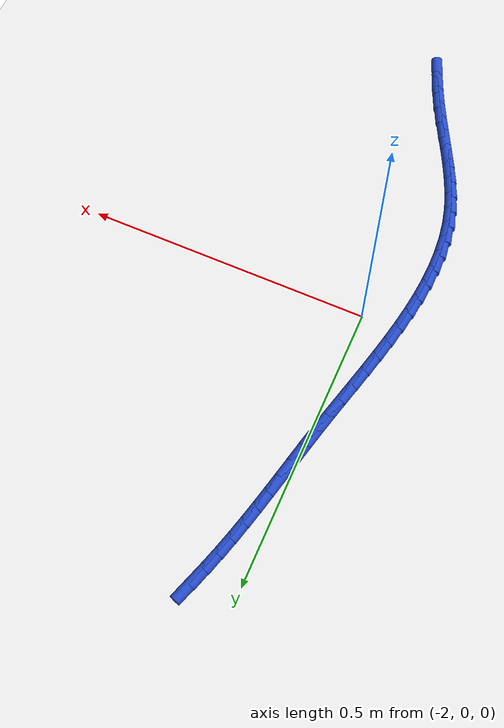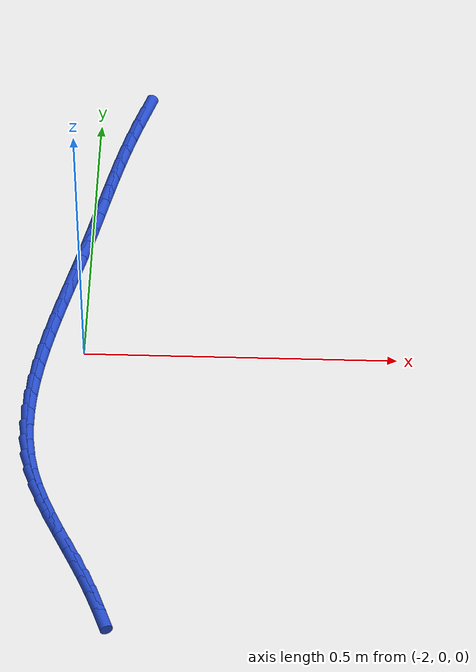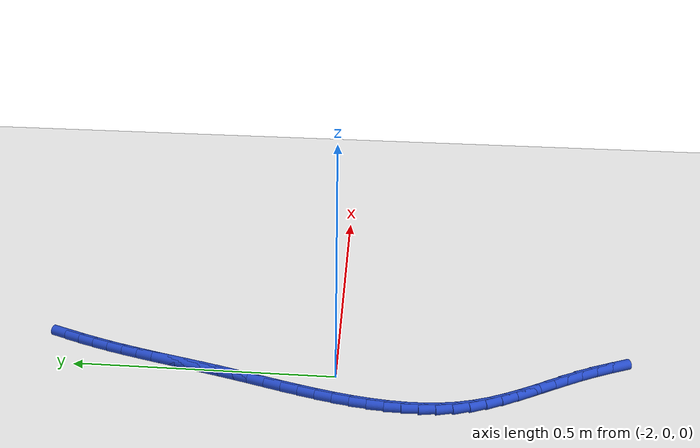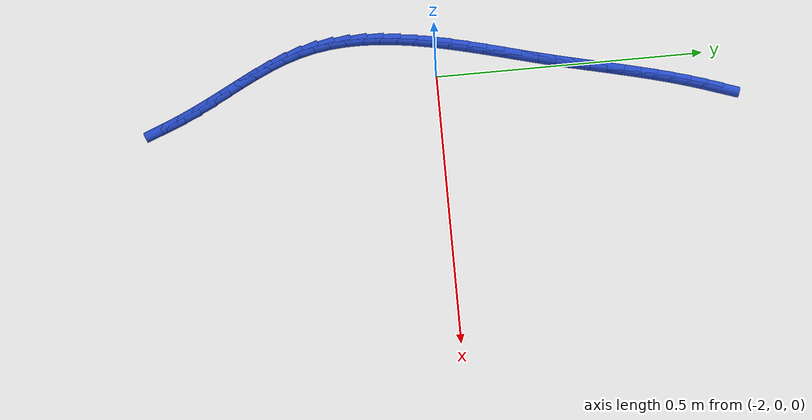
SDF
<sdf version="1.6">
 <world name="default">
  <model name="ground_plane">
   <static>1</static>
   <link name="link">
    <collision name="collision">
     <geometry><plane><normal>0 0 1</normal><size>100 100</size></plane></geometry>
     <surface><friction><ode><mu>100</mu><mu2>50</mu2></ode></friction></surface>
    </collision>
    <visual name="visual">
     <cast_shadows>0</cast_shadows>
     <geometry><plane><normal>0 0 1</normal><size>100 100</size></plane></geometry>
     <material>
      <script><uri>file://media/materials/scripts/gazebo.material</uri><name>Gazebo/WhiteGlow</name></script>
     </material>
    </visual>
   </link>
  </model>
  <model name="line">
   <link name="link_87">
    <pose>-1.9296536162004716 0.5215751881870206 0.01 0 1.57 1.243273327190928</pose>
    <collision name="collision">
     <geometry><cylinder><radius>0.01</radius><length>0.08</length></cylinder></geometry>
    </collision>
    <visual name="visual">
     <material>
      <script><name>Gazebo/Blue</name><uri>file://media/materials/scripts/gazebo.material</uri></script>
     </material>
     <geometry><cylinder><radius>0.01</radius><length>0.08</length></cylinder></geometry>
    </visual>
   </link>
   <link name="link_88">
    <pose>-1.9397027747482027 0.4919979264623918 0.01 0 1.57 1.2666191353432439</pose>
    <collision name="collision">
     <geometry><cylinder><radius>0.01</radius><length>0.08</length></cylinder></geometry>
    </collision>
    <visual name="visual">
     <material>
      <script><name>Gazebo/Blue</name><uri>file://media/materials/scripts/gazebo.material</uri></script>
     </material>
     <geometry><cylinder><radius>0.01</radius><length>0.08</length></cylinder></geometry>
    </visual>
   </link>
   <link name="link_89">
    <pose>-1.9490446085473923 0.462239196307492 0.01 0 1.57 1.28817338275164</pose>
    <collision name="collision">
     <geometry><cylinder><radius>0.01</radius><length>0.08</length></cylinder></geometry>
    </collision>
    <visual name="visual">
     <material>
      <script><name>Gazebo/Blue</name><uri>file://media/materials/scripts/gazebo.material</uri></script>
     </material>
     <geometry><cylinder><radius>0.01</radius><length>0.08</length></cylinder></geometry>
    </visual>
   </link>
   <link name="link_90">
    <pose>-1.9577324476126858 0.4323220144051863 0.01 0 1.57 1.307262991102931</pose>
    <collision name="collision">
     <geometry><cylinder><radius>0.01</radius><length>0.08</length></cylinder></geometry>
    </collision>
    <visual name="visual">
     <material>
      <script><name>Gazebo/Blue</name><uri>file://media/materials/scripts/gazebo.material</uri></script>
     </material>
     <geometry><cylinder><radius>0.01</radius><length>0.08</length></cylinder></geometry>
    </visual>
   </link>
   <link name="link_91">
    <pose>-1.9658437033339735 0.40225900384577296 0.01 0 1.57 1.3223363342150698</pose>
    <collision name="collision">
     <geometry><cylinder><radius>0.01</radius><length>0.08</length></cylinder></geometry>
    </collision>
    <visual name="visual">
     <material>
      <script><name>Gazebo/Blue</name><uri>file://media/materials/scripts/gazebo.material</uri></script>
     </material>
     <geometry><cylinder><radius>0.01</radius><length>0.08</length></cylinder></geometry>
    </visual>
   </link>
   <link name="link_92">
    <pose>-1.9735105440882004 0.37203915444246666 0.01 0 1.57 1.3331264177465174</pose>
    <collision name="collision">
     <geometry><cylinder><radius>0.01</radius><length>0.08</length></cylinder></geometry>
    </collision>
    <visual name="visual">
     <material>
      <script><name>Gazebo/Blue</name><uri>file://media/materials/scripts/gazebo.material</uri></script>
     </material>
     <geometry><cylinder><radius>0.01</radius><length>0.08</length></cylinder></geometry>
    </visual>
   </link>
   <link name="link_93">
    <pose>-1.9808727092579836 0.34164818834010924 0.01 0 1.57 1.3396191649777203</pose>
    <collision name="collision">
     <geometry><cylinder><radius>0.01</radius><length>0.08</length></cylinder></geometry>
    </collision>
    <visual name="visual">
     <material>
      <script><name>Gazebo/Blue</name><uri>file://media/materials/scripts/gazebo.material</uri></script>
     </material>
     <geometry><cylinder><radius>0.01</radius><length>0.08</length></cylinder></geometry>
    </visual>
   </link>
   <link name="link_94">
    <pose>-1.9880699382259401 0.3110718276835417 0.01 0 1.57 1.3418430489996316</pose>
    <collision name="collision">
     <geometry><cylinder><radius>0.01</radius><length>0.08</length></cylinder></geometry>
    </collision>
    <visual name="visual">
     <material>
      <script><name>Gazebo/Blue</name><uri>file://media/materials/scripts/gazebo.material</uri></script>
     </material>
     <geometry><cylinder><radius>0.01</radius><length>0.08</length></cylinder></geometry>
    </visual>
   </link>
   <link name="link_95">
    <pose>-1.9952419703746878 0.2802957946176052 0.01 0 1.57 1.3398642333720083</pose>
    <collision name="collision">
     <geometry><cylinder><radius>0.01</radius><length>0.08</length></cylinder></geometry>
    </collision>
    <visual name="visual">
     <material>
      <script><name>Gazebo/Blue</name><uri>file://media/materials/scripts/gazebo.material</uri></script>
     </material>
     <geometry><cylinder><radius>0.01</radius><length>0.08</length></cylinder></geometry>
    </visual>
   </link>
   <link name="link_96">
    <pose>-2.002528545086843 0.24930581128714158 0.01 0 1.57 1.33378332347846</pose>
    <collision name="collision">
     <geometry><cylinder><radius>0.01</radius><length>0.08</length></cylinder></geometry>
    </collision>
    <visual name="visual">
     <material>
      <script><name>Gazebo/Blue</name><uri>file://media/materials/scripts/gazebo.material</uri></script>
     </material>
     <geometry><cylinder><radius>0.01</radius><length>0.08</length></cylinder></geometry>
    </visual>
   </link>
   <link name="link_97">
    <pose>-2.010069401745023 0.21808759983699186 0.01 0 1.57 1.3240567642599066</pose>
    <collision name="collision">
     <geometry><cylinder><radius>0.01</radius><length>0.08</length></cylinder></geometry>
    </collision>
    <visual name="visual">
     <material>
      <script><name>Gazebo/Blue</name><uri>file://media/materials/scripts/gazebo.material</uri></script>
     </material>
     <geometry><cylinder><radius>0.01</radius><length>0.08</length></cylinder></geometry>
    </visual>
   </link>
   <link name="link_98">
    <pose>-2.0179929043700824 0.18662912292478354 0.01 0 1.57 1.3160329109033007</pose>
    <collision name="collision">
     <geometry><cylinder><radius>0.01</radius><length>0.08</length></cylinder></geometry>
    </collision>
    <visual name="visual">
     <material>
      <script><name>Gazebo/Blue</name><uri>file://media/materials/scripts/gazebo.material</uri></script>
     </material>
     <geometry><cylinder><radius>0.01</radius><length>0.08</length></cylinder></geometry>
    </visual>
   </link>
   <link name="link_99">
    <pose>-2.026241559856527 0.15495494997957435 0.01 0 1.57 1.3138533801849792</pose>
    <collision name="collision">
     <geometry><cylinder><radius>0.01</radius><length>0.08</length></cylinder></geometry>
    </collision>
    <visual name="visual">
     <material>
      <script><name>Gazebo/Blue</name><uri>file://media/materials/scripts/gazebo.material</uri></script>
     </material>
     <geometry><cylinder><radius>0.01</radius><length>0.08</length></cylinder></geometry>
    </visual>
   </link>
   <link name="link_100">
    <pose>-2.0346063510918504 0.1231194948856752 0.01 0 1.57 1.3175220092539452</pose>
    <collision name="collision">
     <geometry><cylinder><radius>0.01</radius><length>0.08</length></cylinder></geometry>
    </collision>
    <visual name="visual">
     <material>
      <script><name>Gazebo/Blue</name><uri>file://media/materials/scripts/gazebo.material</uri></script>
     </material>
     <geometry><cylinder><radius>0.01</radius><length>0.08</length></cylinder></geometry>
    </visual>
   </link>
   <link name="link_101">
    <pose>-2.042873842135962 0.09117804186804264 0.01 0 1.57 1.3270326459852266</pose>
    <collision name="collision">
     <geometry><cylinder><radius>0.01</radius><length>0.08</length></cylinder></geometry>
    </collision>
    <visual name="visual">
     <material>
      <script><name>Gazebo/Blue</name><uri>file://media/materials/scripts/gazebo.material</uri></script>
     </material>
     <geometry><cylinder><radius>0.01</radius><length>0.08</length></cylinder></geometry>
    </visual>
   </link>
   <link name="link_102">
    <pose>-2.050830597048769 0.059185875151634273 0.01 0 1.57 1.3424893006545788</pose>
    <collision name="collision">
     <geometry><cylinder><radius>0.01</radius><length>0.08</length></cylinder></geometry>
    </collision>
    <visual name="visual">
     <material>
      <script><name>Gazebo/Blue</name><uri>file://media/materials/scripts/gazebo.material</uri></script>
     </material>
     <geometry><cylinder><radius>0.01</radius><length>0.08</length></cylinder></geometry>
    </visual>
   </link>
   <link name="link_103">
    <pose>-2.0582631798901803 0.027198278961406766 0.01 0 1.57 1.3640996556070148</pose>
    <collision name="collision">
     <geometry><cylinder><radius>0.01</radius><length>0.08</length></cylinder></geometry>
    </collision>
    <visual name="visual">
     <material>
      <script><name>Gazebo/Blue</name><uri>file://media/materials/scripts/gazebo.material</uri></script>
     </material>
     <geometry><cylinder><radius>0.01</radius><length>0.08</length></cylinder></geometry>
    </visual>
   </link>
   <link name="link_104">
    <pose>-2.0649581547201046 -0.004729462477682987 0.01 0 1.57 1.392165662233157</pose>
    <collision name="collision">
     <geometry><cylinder><radius>0.01</radius><length>0.08</length></cylinder></geometry>
    </collision>
    <visual name="visual">
     <material>
      <script><name>Gazebo/Blue</name><uri>file://media/materials/scripts/gazebo.material</uri></script>
     </material>
     <geometry><cylinder><radius>0.01</radius><length>0.08</length></cylinder></geometry>
    </visual>
   </link>
   <link name="link_105">
    <pose>-2.070702085598451 -0.0365420649406781 0.01 0 1.57 1.427068120047532</pose>
    <collision name="collision">
     <geometry><cylinder><radius>0.01</radius><length>0.08</length></cylinder></geometry>
    </collision>
    <visual name="visual">
     <material>
      <script><name>Gazebo/Blue</name><uri>file://media/materials/scripts/gazebo.material</uri></script>
     </material>
     <geometry><cylinder><radius>0.01</radius><length>0.08</length></cylinder></geometry>
    </visual>
   </link>
   <link name="link_106">
    <pose>-2.0752815365851274 -0.06818424420262229 0.01 0 1.57 1.4692406463171563</pose>
    <collision name="collision">
     <geometry><cylinder><radius>0.01</radius><length>0.08</length></cylinder></geometry>
    </collision>
    <visual name="visual">
     <material>
      <script><name>Gazebo/Blue</name><uri>file://media/materials/scripts/gazebo.material</uri></script>
     </material>
     <geometry><cylinder><radius>0.01</radius><length>0.08</length></cylinder></geometry>
    </visual>
   </link>
   <link name="link_107">
    <pose>-2.078483071740043 -0.09960071603855723 0.01 0 1.57 1.5191269706708386</pose>
    <collision name="collision">
     <geometry><cylinder><radius>0.01</radius><length>0.08</length></cylinder></geometry>
    </collision>
    <visual name="visual">
     <material>
      <script><name>Gazebo/Blue</name><uri>file://media/materials/scripts/gazebo.material</uri></script>
     </material>
     <geometry><cylinder><radius>0.01</radius><length>0.08</length></cylinder></geometry>
    </visual>
   </link>
   <link name="link_108">
    <pose>-2.080093255123106 -0.13073619622352667 0.01 0 1.57 -1.5644779252789316</pose>
    <collision name="collision">
     <geometry><cylinder><radius>0.01</radius><length>0.08</length></cylinder></geometry>
    </collision>
    <visual name="visual">
     <material>
      <script><name>Gazebo/Blue</name><uri>file://media/materials/scripts/gazebo.material</uri></script>
     </material>
     <geometry><cylinder><radius>0.01</radius><length>0.08</length></cylinder></geometry>
    </visual>
   </link>
   <link name="link_109">
    <pose>-2.0798986507942248 -0.1615354005325737 0.01 0 1.57 -1.498152286507841</pose>
    <collision name="collision">
     <geometry><cylinder><radius>0.01</radius><length>0.08</length></cylinder></geometry>
    </collision>
    <visual name="visual">
     <material>
      <script><name>Gazebo/Blue</name><uri>file://media/materials/scripts/gazebo.material</uri></script>
     </material>
     <geometry><cylinder><radius>0.01</radius><length>0.08</length></cylinder></geometry>
    </visual>
   </link>
   <link name="link_110">
    <pose>-2.0776858228133084 -0.1919430447407414 0.01 0 1.57 -1.4235268970071182</pose>
    <collision name="collision">
     <geometry><cylinder><radius>0.01</radius><length>0.08</length></cylinder></geometry>
    </collision>
    <visual name="visual">
     <material>
      <script><name>Gazebo/Blue</name><uri>file://media/materials/scripts/gazebo.material</uri></script>
     </material>
     <geometry><cylinder><radius>0.01</radius><length>0.08</length></cylinder></geometry>
    </visual>
   </link>
   <link name="link_111">
    <pose>-2.073241335240265 -0.2219038446230728 0.01 0 1.57 -1.3410685402985054</pose>
    <collision name="collision">
     <geometry><cylinder><radius>0.01</radius><length>0.08</length></cylinder></geometry>
    </collision>
    <visual name="visual">
     <material>
      <script><name>Gazebo/Blue</name><uri>file://media/materials/scripts/gazebo.material</uri></script>
     </material>
     <geometry><cylinder><radius>0.01</radius><length>0.08</length></cylinder></geometry>
    </visual>
   </link>
   <link name="link_112">
    <pose>-2.0663522090546613 -0.251362652654273 0.01 0 1.57 -1.2578972870650027</pose>
    <collision name="collision">
     <geometry><cylinder><radius>0.01</radius><length>0.08</length></cylinder></geometry>
    </collision>
    <visual name="visual">
     <material>
      <script><name>Gazebo/Blue</name><uri>file://media/materials/scripts/gazebo.material</uri></script>
     </material>
     <geometry><cylinder><radius>0.01</radius><length>0.08</length></cylinder></geometry>
    </visual>
   </link>
   <link name="link_113">
    <pose>-2.0569844179217522 -0.280317859761758 0.01 0 1.57 -1.1903925184683197</pose>
    <collision name="collision">
     <geometry><cylinder><radius>0.01</radius><length>0.08</length></cylinder></geometry>
    </collision>
    <visual name="visual">
     <material>
      <script><name>Gazebo/Blue</name><uri>file://media/materials/scripts/gazebo.material</uri></script>
     </material>
     <geometry><cylinder><radius>0.01</radius><length>0.08</length></cylinder></geometry>
    </visual>
   </link>
   <link name="link_114">
    <pose>-2.0455539646584784 -0.30890249505602047 0.01 0 1.57 -1.14087319500306</pose>
    <collision name="collision">
     <geometry><cylinder><radius>0.01</radius><length>0.08</length></cylinder></geometry>
    </collision>
    <visual name="visual">
     <material>
      <script><name>Gazebo/Blue</name><uri>file://media/materials/scripts/gazebo.material</uri></script>
     </material>
     <geometry><cylinder><radius>0.01</radius><length>0.08</length></cylinder></geometry>
    </visual>
   </link>
   <link name="link_115">
    <pose>-2.0325464779216693 -0.3372704180682981 0.01 0 1.57 -1.1086660214399604</pose>
    <collision name="collision">
     <geometry><cylinder><radius>0.01</radius><length>0.08</length></cylinder></geometry>
    </collision>
    <visual name="visual">
     <material>
      <script><name>Gazebo/Blue</name><uri>file://media/materials/scripts/gazebo.material</uri></script>
     </material>
     <geometry><cylinder><radius>0.01</radius><length>0.08</length></cylinder></geometry>
    </visual>
   </link>
   <link name="link_116">
    <pose>-2.0184475863681532 -0.3655754883298285 0.01 0 1.57 -1.092977590594565</pose>
    <collision name="collision">
     <geometry><cylinder><radius>0.01</radius><length>0.08</length></cylinder></geometry>
    </collision>
    <visual name="visual">
     <material>
      <script><name>Gazebo/Blue</name><uri>file://media/materials/scripts/gazebo.material</uri></script>
     </material>
     <geometry><cylinder><radius>0.01</radius><length>0.08</length></cylinder></geometry>
    </visual>
   </link>
   <link name="link_117">
    <pose>-2.003742918654761 -0.39397156537184946 0.01 0 1.57 -1.0931608184124562</pose>
    <collision name="collision">
     <geometry><cylinder><radius>0.01</radius><length>0.08</length></cylinder></geometry>
    </collision>
    <visual name="visual">
     <material>
      <script><name>Gazebo/Blue</name><uri>file://media/materials/scripts/gazebo.material</uri></script>
     </material>
     <geometry><cylinder><radius>0.01</radius><length>0.08</length></cylinder></geometry>
    </visual>
   </link>
   <link name="link_118">
    <pose>-1.9889181034383214 -0.42261250872559886 0.01 0 1.57 -1.10881680676063</pose>
    <collision name="collision">
     <geometry><cylinder><radius>0.01</radius><length>0.08</length></cylinder></geometry>
    </collision>
    <visual name="visual">
     <material>
      <script><name>Gazebo/Blue</name><uri>file://media/materials/scripts/gazebo.material</uri></script>
     </material>
     <geometry><cylinder><radius>0.01</radius><length>0.08</length></cylinder></geometry>
    </visual>
   </link>
   <link name="link_119">
    <pose>-1.974458769375664 -0.4516521779223147 0.01 0 1.57 -1.139616362913359</pose>
    <collision name="collision">
     <geometry><cylinder><radius>0.01</radius><length>0.08</length></cylinder></geometry>
    </collision>
    <visual name="visual">
     <material>
      <script><name>Gazebo/Blue</name><uri>file://media/materials/scripts/gazebo.material</uri></script>
     </material>
     <geometry><cylinder><radius>0.01</radius><length>0.08</length></cylinder></geometry>
    </visual>
   </link>
   <link name="link_120">
    <pose>-1.960845907866142 -0.4812421422301667 0.01 0 1.57 -1.175128547744662</pose>
    <collision name="collision">
     <geometry><cylinder><radius>0.01</radius><length>0.08</length></cylinder></geometry>
    </collision>
    <visual name="visual">
     <material>
      <script><name>Gazebo/Blue</name><uri>file://media/materials/scripts/gazebo.material</uri></script>
     </material>
     <geometry><cylinder><radius>0.01</radius><length>0.08</length></cylinder></geometry>
    </visual>
   </link>
   <link name="link_121">
    <pose>-1.9482559614909343 -0.5113835594048934 0.01 0 1.57 -1.1988912621066383</pose>
    <collision name="collision">
     <geometry><cylinder><radius>0.01</radius><length>0.08</length></cylinder></geometry>
    </collision>
    <visual name="visual">
     <material>
      <script><name>Gazebo/Blue</name><uri>file://media/materials/scripts/gazebo.material</uri></script>
     </material>
     <geometry><cylinder><radius>0.01</radius><length>0.08</length></cylinder></geometry>
    </visual>
   </link>
  </model>
 </world>
</sdf>
